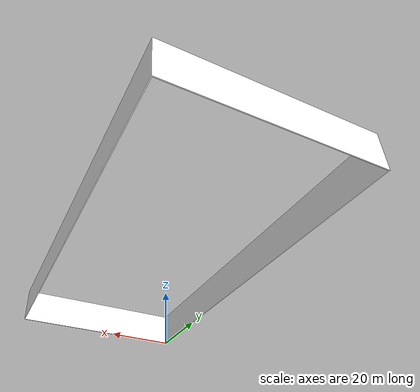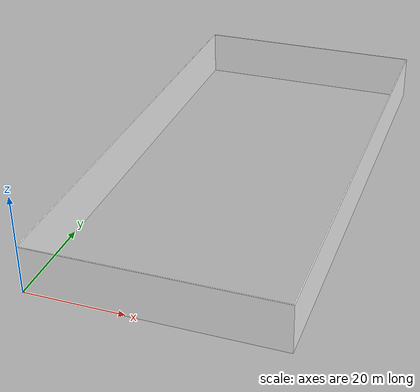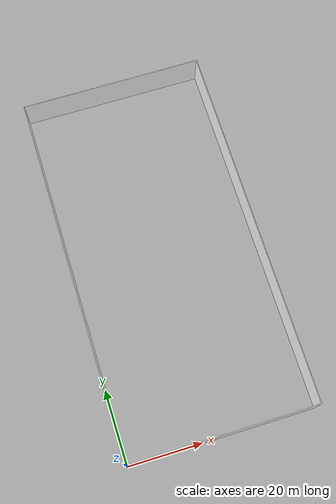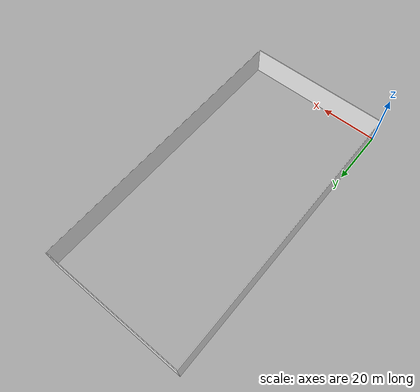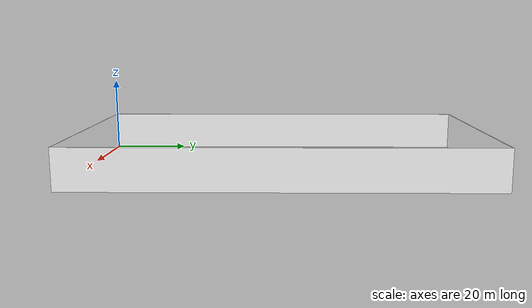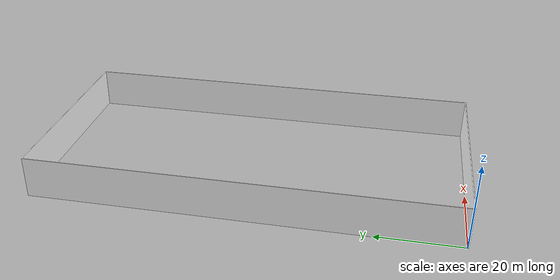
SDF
<?xml version='1.0'?>
<sdf version='1.7'>
  <model name='factory'>
    <static>true</static>
    <link name="building">
      <visual name="visual">
        <geometry>
            <mesh>
                <uri>meshes/factory.dae</uri>
            </mesh>
        </geometry>
      </visual>
      <collision name="collision">
        <geometry>
            <mesh>
                <uri>meshes/factory.dae</uri>
            </mesh>
        </geometry>
      </collision>
    </link>
  </model>
</sdf>
